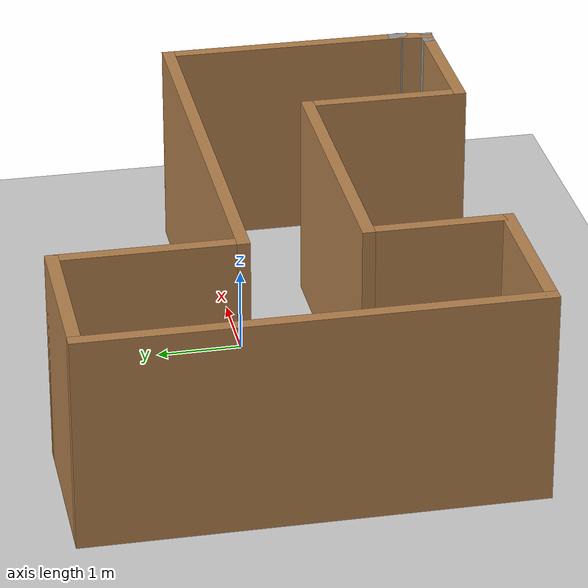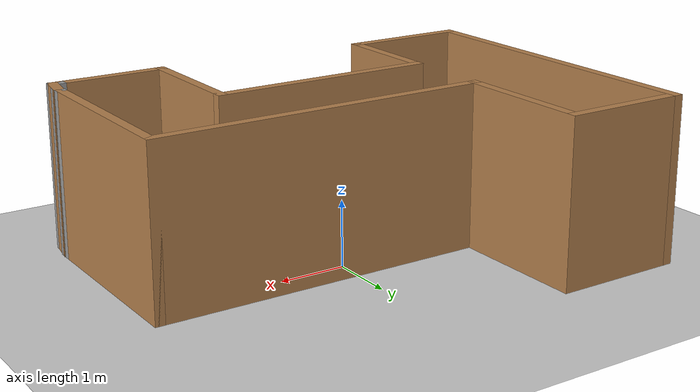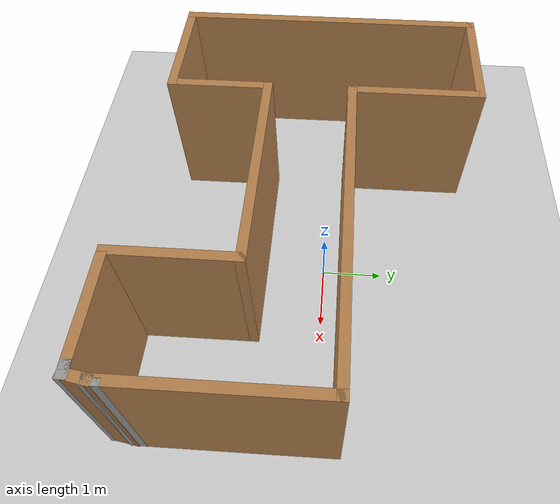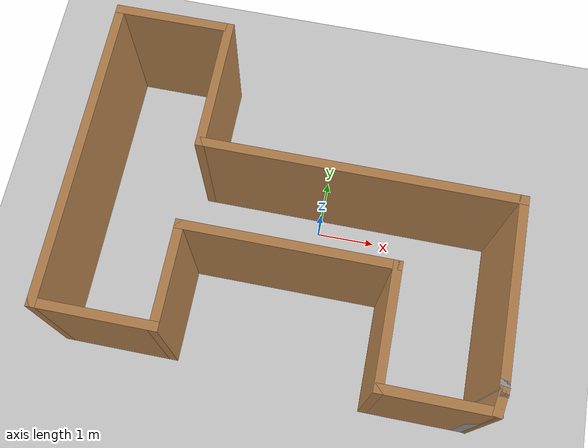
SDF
<sdf version="1.6">
 <world name="default">
  <light name="sun" type="directional">
   <pose>0 0 10 0 -0 0</pose>
   <diffuse>0.8 0.8 0.8 1</diffuse>
   <specular>0.1 0.1 0.1 1</specular>
   <attenuation>
    <range>1000</range>
    <constant>0.9</constant>
    <linear>0.01</linear>
    <quadratic>0.001</quadratic>
   </attenuation>
   <direction>-0.5 0.5 -1</direction>
  </light>
  <model name="ground_plane">
   <static>1</static>
   <link name="link">
    <collision name="collision">
     <geometry><plane><normal>0 0 1</normal><size>100 100</size></plane></geometry>
     <surface><friction><ode><mu>100</mu><mu2>50</mu2></ode></friction></surface>
    </collision>
    <visual name="visual">
     <cast_shadows>0</cast_shadows>
     <geometry><plane><normal>0 0 1</normal><size>100 100</size></plane></geometry>
     <material>
      <script><uri>file://media/materials/scripts/gazebo.material</uri><name>Gazebo/Grey</name></script>
     </material>
    </visual>
   </link>
  </model>
  <gravity>0 0 -9.8</gravity>
  <magnetic_field>6e-06 2.3e-05 -4.2e-05</magnetic_field>
  <atmosphere type="adiabatic"/>
  <physics name="default_physics" default="0" type="ode">
   <max_step_size>0.001</max_step_size>
   <real_time_factor>1</real_time_factor>
   <real_time_update_rate>1000</real_time_update_rate>
  </physics>
  <scene><ambient>0.4 0.4 0.4 1</ambient><background>0.7 0.7 0.7 1</background><shadows>1</shadows></scene>
  <spherical_coordinates>
   <surface_model>EARTH_WGS84</surface_model>
   <latitude_deg>0</latitude_deg>
   <longitude_deg>0</longitude_deg>
   <elevation>0</elevation>
   <heading_deg>0</heading_deg>
  </spherical_coordinates>
  <model name="mybuilding">
   <pose>-0.424859 -0.248014 0 0 -0 0</pose>
   <link name="Wall_1">
    <collision name="Wall_1_Collision">
     <geometry><box><size>5.25 0.15 2.5</size></box></geometry>
     <pose>0 0 1.25 0 -0 0</pose>
    </collision>
    <visual name="Wall_1_Visual">
     <pose>0 0 1.25 0 -0 0</pose>
     <geometry><box><size>5.25 0.15 2.5</size></box></geometry>
     <material>
      <script><uri>file://media/materials/scripts/gazebo.material</uri><name>Gazebo/Wood</name></script>
      <ambient>1 1 1 1</ambient>
     </material>
     <meta><layer>0</layer></meta>
    </visual>
    <pose>-3.48066 0.130655 0 0 -0 1.5708</pose>
   </link>
   <link name="Wall_11">
    <collision name="Wall_11_Collision">
     <geometry><box><size>2 0.15 2.5</size></box></geometry>
     <pose>0 0 1.25 0 -0 0</pose>
    </collision>
    <visual name="Wall_11_Visual">
     <pose>0 0 1.25 0 -0 0</pose>
     <geometry><box><size>2 0.15 2.5</size></box></geometry>
     <material>
      <script><uri>file://media/materials/scripts/gazebo.material</uri><name>Gazebo/Wood</name></script>
      <ambient>1 1 1 1</ambient>
     </material>
     <meta><layer>0</layer></meta>
    </visual>
    <pose>-2.55565 -2.41934 0 0 -0 0</pose>
   </link>
   <link name="Wall_12">
    <collision name="Wall_12_Collision">
     <geometry><box><size>1.75 0.15 2.5</size></box></geometry>
     <pose>0 0 1.25 0 -0 0</pose>
    </collision>
    <visual name="Wall_12_Visual">
     <pose>0 0 1.25 0 -0 0</pose>
     <geometry><box><size>1.75 0.15 2.5</size></box></geometry>
     <material>
      <script><uri>file://media/materials/scripts/gazebo.material</uri><name>Gazebo/Wood</name></script>
      <ambient>1 1 1 1</ambient>
     </material>
     <meta><layer>0</layer></meta>
    </visual>
    <pose>-1.63065 -1.61935 0 0 -0 1.5708</pose>
   </link>
   <link name="Wall_13">
    <collision name="Wall_13_Collision">
     <geometry><box><size>3.5 0.15 2.5</size></box></geometry>
     <pose>0 0 1.25 0 -0 0</pose>
    </collision>
    <visual name="Wall_13_Visual">
     <pose>0 0 1.25 0 -0 0</pose>
     <geometry><box><size>3.5 0.15 2.5</size></box></geometry>
     <material>
      <script><uri>file://media/materials/scripts/gazebo.material</uri><name>Gazebo/Wood</name></script>
      <ambient>1 1 1 1</ambient>
     </material>
     <meta><layer>0</layer></meta>
    </visual>
    <pose>0.044345 -0.819345 0 0 -0 0</pose>
   </link>
   <link name="Wall_14">
    <collision name="Wall_14_Collision">
     <geometry><box><size>2 0.15 2.5</size></box></geometry>
     <pose>0 0 1.25 0 -0 0</pose>
    </collision>
    <visual name="Wall_14_Visual">
     <pose>0 0 1.25 0 -0 0</pose>
     <geometry><box><size>2 0.15 2.5</size></box></geometry>
     <material>
      <script><uri>file://media/materials/scripts/gazebo.material</uri><name>Gazebo/Wood</name></script>
      <ambient>1 1 1 1</ambient>
     </material>
     <meta><layer>0</layer></meta>
    </visual>
    <pose>1.71934 -1.74435 0 0 0 -1.5708</pose>
   </link>
   <link name="Wall_15">
    <collision name="Wall_15_Collision">
     <geometry><box><size>1.75 0.15 2.5</size></box></geometry>
     <pose>0 0 1.25 0 -0 0</pose>
    </collision>
    <visual name="Wall_15_Visual">
     <pose>0 0 1.25 0 -0 0</pose>
     <geometry><box><size>1.75 0.15 2.5</size></box></geometry>
     <material>
      <script><uri>file://media/materials/scripts/gazebo.material</uri><name>Gazebo/Wood</name></script>
      <ambient>1 1 1 1</ambient>
     </material>
     <meta><layer>0</layer></meta>
    </visual>
    <pose>2.51934 -2.66934 0 0 -0 0</pose>
   </link>
   <link name="Wall_16">
    <collision name="Wall_16_Collision">
     <geometry><box><size>0.25 0.15 2.5</size></box></geometry>
     <pose>0 0 1.25 0 -0 0</pose>
    </collision>
    <visual name="Wall_16_Visual">
     <pose>0 0 1.25 0 -0 0</pose>
     <geometry><box><size>0.25 0.15 2.5</size></box></geometry>
     <material>
      <script><uri>file://media/materials/scripts/gazebo.material</uri><name>Gazebo/Grey</name></script>
      <ambient>1 1 1 1</ambient>
     </material>
     <meta><layer>0</layer></meta>
    </visual>
    <pose>3.36935 -2.66934 0 0 -0 0</pose>
   </link>
   <link name="Wall_17">
    <collision name="Wall_17_Collision">
     <geometry><box><size>0.454138 0.15 2.5</size></box></geometry>
     <pose>0 0 1.25 0 -0 0</pose>
    </collision>
    <visual name="Wall_17_Visual">
     <pose>0 0 1.25 0 -0 0</pose>
     <geometry><box><size>0.454138 0.15 2.5</size></box></geometry>
     <material>
      <script><uri>file://media/materials/scripts/gazebo.material</uri><name>Gazebo/Wood</name></script>
      <ambient>1 1 1 1</ambient>
     </material>
     <meta><layer>0</layer></meta>
    </visual>
    <pose>3.44435 -2.51934 0 0 -0 1.40565</pose>
   </link>
   <link name="Wall_2">
    <collision name="Wall_2_Collision">
     <geometry><box><size>2 0.15 2.5</size></box></geometry>
     <pose>0 0 1.25 0 -0 0</pose>
    </collision>
    <visual name="Wall_2_Visual">
     <pose>0 0 1.25 0 -0 0</pose>
     <geometry><box><size>2 0.15 2.5</size></box></geometry>
     <material>
      <script><uri>file://media/materials/scripts/gazebo.material</uri><name>Gazebo/Wood</name></script>
      <ambient>1 1 1 1</ambient>
     </material>
     <meta><layer>0</layer></meta>
    </visual>
    <pose>-2.55565 2.68065 0 0 -0 0</pose>
   </link>
   <link name="Wall_3">
    <collision name="Wall_3_Collision">
     <geometry><box><size>2.25 0.15 2.5</size></box></geometry>
     <pose>0 0 1.25 0 -0 0</pose>
    </collision>
    <visual name="Wall_3_Visual">
     <pose>0 0 1.25 0 -0 0</pose>
     <geometry><box><size>2.25 0.15 2.5</size></box></geometry>
     <material>
      <script><uri>file://media/materials/scripts/gazebo.material</uri><name>Gazebo/Wood</name></script>
      <ambient>1 1 1 1</ambient>
     </material>
     <meta><layer>0</layer></meta>
    </visual>
    <pose>-1.63065 1.63065 0 0 0 -1.5708</pose>
   </link>
   <link name="Wall_4">
    <collision name="Wall_4_Collision">
     <geometry><box><size>5.25 0.15 2.5</size></box></geometry>
     <pose>0 0 1.25 0 -0 0</pose>
    </collision>
    <visual name="Wall_4_Visual">
     <pose>0 0 1.25 0 -0 0</pose>
     <geometry><box><size>5.25 0.15 2.5</size></box></geometry>
     <material>
      <script><uri>file://media/materials/scripts/gazebo.material</uri><name>Gazebo/Wood</name></script>
      <ambient>1 1 1 1</ambient>
     </material>
     <meta><layer>0</layer></meta>
    </visual>
    <pose>0.919345 0.580655 0 0 -0 0</pose>
   </link>
   <link name="Wall_7">
    <collision name="Wall_7_Collision">
     <geometry><box><size>3 0.15 2.5</size></box></geometry>
     <pose>0 0 1.25 0 -0 0</pose>
    </collision>
    <visual name="Wall_7_Visual">
     <pose>0 0 1.25 0 -0 0</pose>
     <geometry><box><size>3 0.15 2.5</size></box></geometry>
     <material>
      <script><uri>file://media/materials/scripts/gazebo.material</uri><name>Gazebo/Wood</name></script>
      <ambient>1 1 1 1</ambient>
     </material>
     <meta><layer>0</layer></meta>
    </visual>
    <pose>3.46935 -0.844345 0 0 0 -1.5708</pose>
   </link>
   <link name="Wall_8">
    <collision name="Wall_8_Collision">
     <geometry><box><size>0.25 0.15 2.5</size></box></geometry>
     <pose>0 0 1.25 0 -0 0</pose>
    </collision>
    <visual name="Wall_8_Visual">
     <pose>0 0 1.25 0 -0 0</pose>
     <geometry><box><size>0.25 0.15 2.5</size></box></geometry>
     <material>
      <script><uri>file://media/materials/scripts/gazebo.material</uri><name>Gazebo/Grey</name></script>
      <ambient>1 1 1 1</ambient>
     </material>
     <meta><layer>0</layer></meta>
    </visual>
    <pose>3.46935 -2.31935 0 0 0 -1.5708</pose>
   </link>
   <link name="Wall_9">
    <collision name="Wall_9_Collision">
     <geometry><box><size>0.15 0.15 2.5</size></box></geometry>
     <pose>0 0 1.25 0 -0 0</pose>
    </collision>
    <visual name="Wall_9_Visual">
     <pose>0 0 1.25 0 -0 0</pose>
     <geometry><box><size>0.15 0.15 2.5</size></box></geometry>
     <material>
      <script><uri>file://media/materials/scripts/gazebo.material</uri><name>Gazebo/Grey</name></script>
      <ambient>1 1 1 1</ambient>
     </material>
     <meta><layer>0</layer></meta>
    </visual>
    <pose>3.46935 -2.36935 0 0 -0 0</pose>
   </link>
   <static>1</static>
  </model>
 </world>
</sdf>
